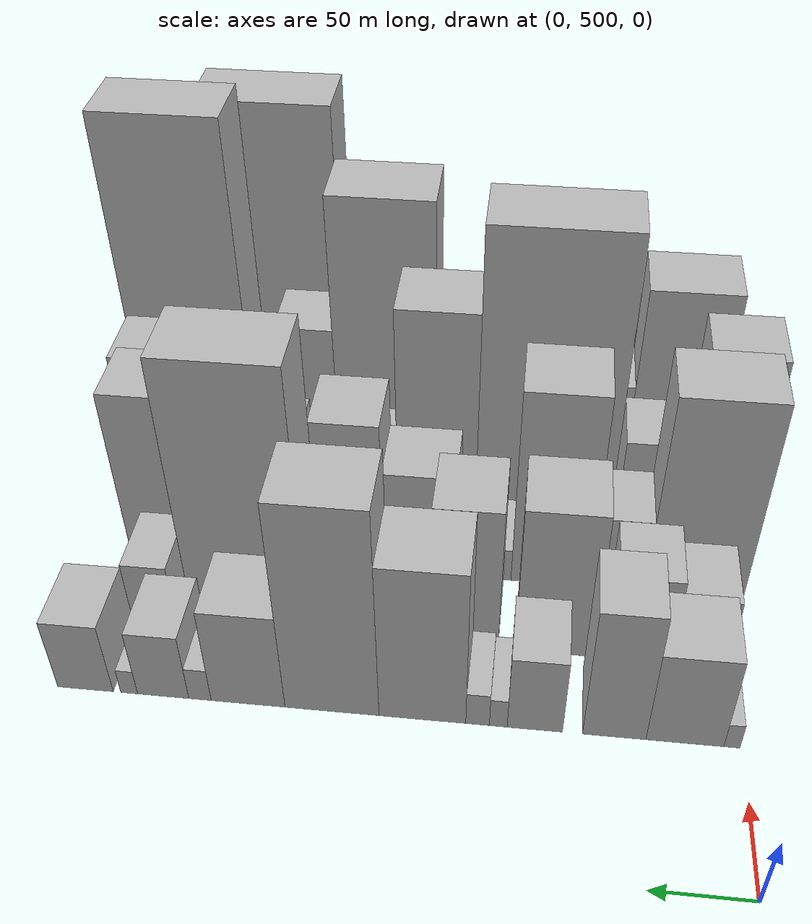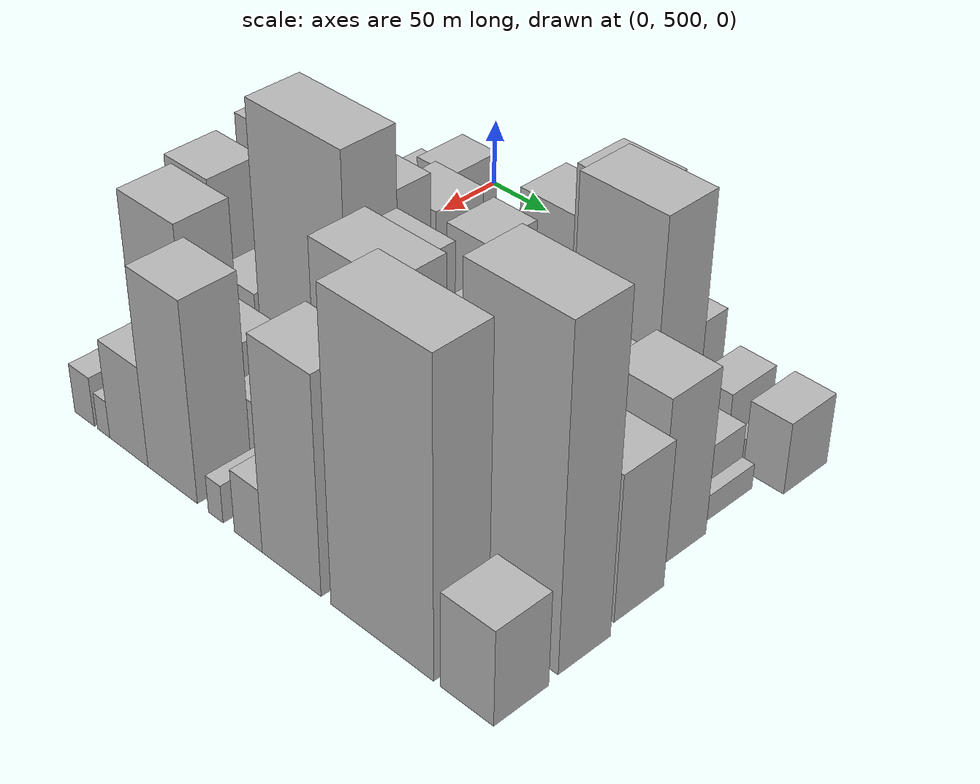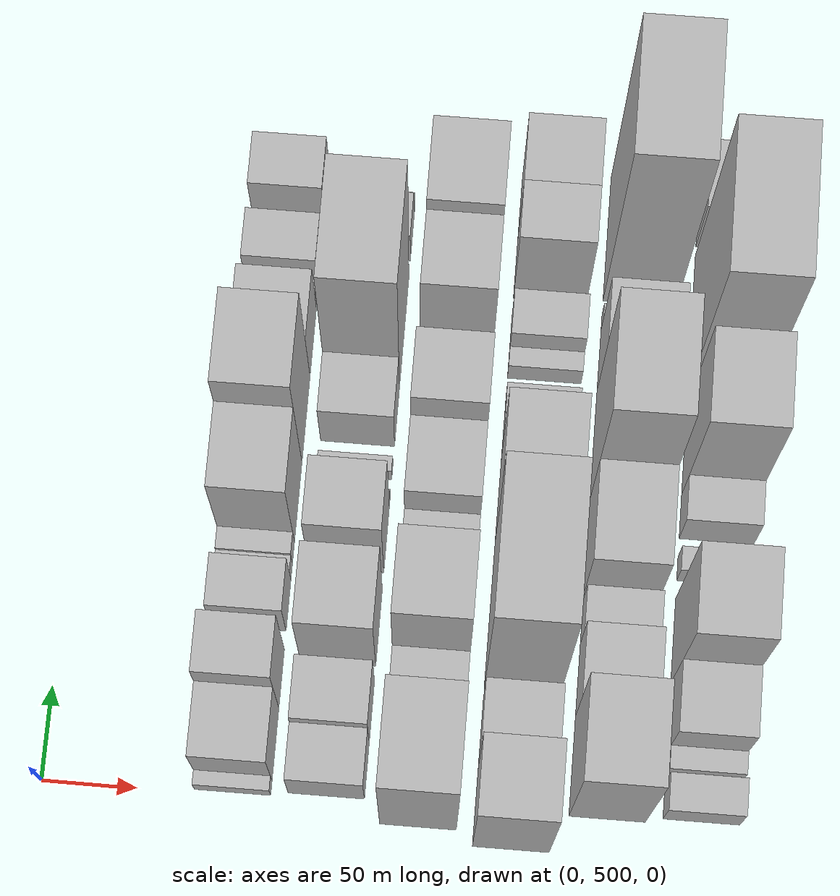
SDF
<sdf version="1.6">
 <world name="default">
  <model name="building_39">
   <static>1</static>
   <pose>100.0000 505.7400 0 0.000000 0.000000 0.000000</pose>
   <link name="link">
    <pose>0 0 9.00 0 0 0</pose>
    <collision name="collision"><geometry><box><size>40.0000 7.8266 18.0000</size></box></geometry></collision>
    <visual name="visual">
     <cast_shadows>0</cast_shadows>
     <geometry><box><size>40.0000 7.8266 18.0000</size></box></geometry>
     <material>
      <script>
       <uri>model://HANNAS_wall/materials/scripts</uri>
       <uri>model://HANNAS_wall/materials/textures</uri>
       <name>vrc/HANNAS_wall</name>
      </script>
     </material>
    </visual>
   </link>
  </model>
  <model name="building_40">
   <static>1</static>
   <pose>100.0000 528.8231 0 0.000000 0.000000 0.000000</pose>
   <link name="link">
    <pose>0 0 33.00 0 0 0</pose>
    <collision name="collision"><geometry><box><size>40.0000 38.3396 66.0000</size></box></geometry></collision>
    <visual name="visual">
     <cast_shadows>0</cast_shadows>
     <geometry><box><size>40.0000 38.3396 66.0000</size></box></geometry>
     <material>
      <script>
       <uri>model://HANNAS_wall/materials/scripts</uri>
       <uri>model://HANNAS_wall/materials/textures</uri>
       <name>vrc/HANNAS_wall</name>
      </script>
     </material>
    </visual>
   </link>
  </model>
  <model name="building_41">
   <static>1</static>
   <pose>100.0000 563.7288 0 0.000000 0.000000 0.000000</pose>
   <link name="link">
    <pose>0 0 46.50 0 0 0</pose>
    <collision name="collision"><geometry><box><size>40.0000 31.4718 93.0000</size></box></geometry></collision>
    <visual name="visual">
     <cast_shadows>0</cast_shadows>
     <geometry><box><size>40.0000 31.4718 93.0000</size></box></geometry>
     <material>
      <script>
       <uri>model://HANNAS_wall/materials/scripts</uri>
       <uri>model://HANNAS_wall/materials/textures</uri>
       <name>vrc/HANNAS_wall</name>
      </script>
     </material>
    </visual>
   </link>
  </model>
  <model name="building_42">
   <static>1</static>
   <pose>100.0000 603.3190 0 0.000000 0.000000 0.000000</pose>
   <link name="link">
    <pose>0 0 27.00 0 0 0</pose>
    <collision name="collision"><geometry><box><size>40.0000 27.7086 54.0000</size></box></geometry></collision>
    <visual name="visual">
     <cast_shadows>0</cast_shadows>
     <geometry><box><size>40.0000 27.7086 54.0000</size></box></geometry>
     <material>
      <script>
       <uri>model://HANNAS_wall/materials/scripts</uri>
       <uri>model://HANNAS_wall/materials/textures</uri>
       <name>vrc/HANNAS_wall</name>
      </script>
     </material>
    </visual>
   </link>
  </model>
  <model name="building_43">
   <static>1</static>
   <pose>100.0000 621.6460 0 0.000000 0.000000 0.000000</pose>
   <link name="link">
    <pose>0 0 10.50 0 0 0</pose>
    <collision name="collision"><geometry><box><size>40.0000 8.9455 21.0000</size></box></geometry></collision>
    <visual name="visual">
     <cast_shadows>0</cast_shadows>
     <geometry><box><size>40.0000 8.9455 21.0000</size></box></geometry>
     <material>
      <script>
       <uri>model://HANNAS_wall/materials/scripts</uri>
       <uri>model://HANNAS_wall/materials/textures</uri>
       <name>vrc/HANNAS_wall</name>
      </script>
     </material>
    </visual>
   </link>
  </model>
  <model name="building_44">
   <static>1</static>
   <pose>100.0000 632.0874 0 0.000000 0.000000 0.000000</pose>
   <link name="link">
    <pose>0 0 12.00 0 0 0</pose>
    <collision name="collision"><geometry><box><size>40.0000 11.9373 24.0000</size></box></geometry></collision>
    <visual name="visual">
     <cast_shadows>0</cast_shadows>
     <geometry><box><size>40.0000 11.9373 24.0000</size></box></geometry>
     <material>
      <script>
       <uri>model://HANNAS_wall/materials/scripts</uri>
       <uri>model://HANNAS_wall/materials/textures</uri>
       <name>vrc/HANNAS_wall</name>
      </script>
     </material>
    </visual>
   </link>
  </model>
  <model name="building_45">
   <static>1</static>
   <pose>100.0000 660.1086 0 0.000000 0.000000 0.000000</pose>
   <link name="link">
    <pose>0 0 55.50 0 0 0</pose>
    <collision name="collision"><geometry><box><size>40.0000 44.1050 111.0000</size></box></geometry></collision>
    <visual name="visual">
     <cast_shadows>0</cast_shadows>
     <geometry><box><size>40.0000 44.1050 111.0000</size></box></geometry>
     <material>
      <script>
       <uri>model://HANNAS_wall/materials/scripts</uri>
       <uri>model://HANNAS_wall/materials/textures</uri>
       <name>vrc/HANNAS_wall</name>
      </script>
     </material>
    </visual>
   </link>
  </model>
  <model name="building_46">
   <static>1</static>
   <pose>100.0000 706.3881 0 0.000000 0.000000 0.000000</pose>
   <link name="link">
    <pose>0 0 73.50 0 0 0</pose>
    <collision name="collision"><geometry><box><size>40.0000 48.4541 147.0000</size></box></geometry></collision>
    <visual name="visual">
     <cast_shadows>0</cast_shadows>
     <geometry><box><size>40.0000 48.4541 147.0000</size></box></geometry>
     <material>
      <script>
       <uri>model://HANNAS_wall/materials/scripts</uri>
       <uri>model://HANNAS_wall/materials/textures</uri>
       <name>vrc/HANNAS_wall</name>
      </script>
     </material>
    </visual>
   </link>
  </model>
  <model name="building_47">
   <static>1</static>
   <pose>100.0000 749.8474 0 0.000000 0.000000 0.000000</pose>
   <link name="link">
    <pose>0 0 34.50 0 0 0</pose>
    <collision name="collision"><geometry><box><size>40.0000 38.4644 69.0000</size></box></geometry></collision>
    <visual name="visual">
     <cast_shadows>0</cast_shadows>
     <geometry><box><size>40.0000 38.4644 69.0000</size></box></geometry>
     <material>
      <script>
       <uri>model://HANNAS_wall/materials/scripts</uri>
       <uri>model://HANNAS_wall/materials/textures</uri>
       <name>vrc/HANNAS_wall</name>
      </script>
     </material>
    </visual>
   </link>
  </model>
  <model name="building_48">
   <static>1</static>
   <pose>100.0000 774.9256 0 0.000000 0.000000 0.000000</pose>
   <link name="link">
    <pose>0 0 12.00 0 0 0</pose>
    <collision name="collision"><geometry><box><size>40.0000 11.6920 24.0000</size></box></geometry></collision>
    <visual name="visual">
     <cast_shadows>0</cast_shadows>
     <geometry><box><size>40.0000 11.6920 24.0000</size></box></geometry>
     <material>
      <script>
       <uri>model://HANNAS_wall/materials/scripts</uri>
       <uri>model://HANNAS_wall/materials/textures</uri>
       <name>vrc/HANNAS_wall</name>
      </script>
     </material>
    </visual>
   </link>
  </model>
  <model name="building_49">
   <static>1</static>
   <pose>100.0000 794.2808 0 0.000000 0.000000 0.000000</pose>
   <link name="link">
    <pose>0 0 24.00 0 0 0</pose>
    <collision name="collision"><geometry><box><size>40.0000 27.0184 48.0000</size></box></geometry></collision>
    <visual name="visual">
     <cast_shadows>0</cast_shadows>
     <geometry><box><size>40.0000 27.0184 48.0000</size></box></geometry>
     <material>
      <script>
       <uri>model://HANNAS_wall/materials/scripts</uri>
       <uri>model://HANNAS_wall/materials/textures</uri>
       <name>vrc/HANNAS_wall</name>
      </script>
     </material>
    </visual>
   </link>
  </model>
  <model name="building_50">
   <static>1</static>
   <pose>100.0000 812.2266 0 0.000000 0.000000 0.000000</pose>
   <link name="link">
    <pose>0 0 9.00 0 0 0</pose>
    <collision name="collision"><geometry><box><size>40.0000 8.8730 18.0000</size></box></geometry></collision>
    <visual name="visual">
     <cast_shadows>0</cast_shadows>
     <geometry><box><size>40.0000 8.8730 18.0000</size></box></geometry>
     <material>
      <script>
       <uri>model://HANNAS_wall/materials/scripts</uri>
       <uri>model://HANNAS_wall/materials/textures</uri>
       <name>vrc/HANNAS_wall</name>
      </script>
     </material>
    </visual>
   </link>
  </model>
  <model name="building_51">
   <static>1</static>
   <pose>100.0000 835.4066 0 0.000000 0.000000 0.000000</pose>
   <link name="link">
    <pose>0 0 25.50 0 0 0</pose>
    <collision name="collision"><geometry><box><size>40.0000 29.4870 51.0000</size></box></geometry></collision>
    <visual name="visual">
     <cast_shadows>0</cast_shadows>
     <geometry><box><size>40.0000 29.4870 51.0000</size></box></geometry>
     <material>
      <script>
       <uri>model://HANNAS_wall/materials/scripts</uri>
       <uri>model://HANNAS_wall/materials/textures</uri>
       <name>vrc/HANNAS_wall</name>
      </script>
     </material>
    </visual>
   </link>
  </model>
  <model name="building_97">
   <static>1</static>
   <pose>149.0000 518.6823 0 0.000000 0.000000 0.000000</pose>
   <link name="link">
    <pose>0 0 25.50 0 0 0</pose>
    <collision name="collision"><geometry><box><size>40.0000 29.6349 51.0000</size></box></geometry></collision>
    <visual name="visual">
     <cast_shadows>0</cast_shadows>
     <geometry><box><size>40.0000 29.6349 51.0000</size></box></geometry>
     <material>
      <script>
       <uri>model://HANNAS_wall/materials/scripts</uri>
       <uri>model://HANNAS_wall/materials/textures</uri>
       <name>vrc/HANNAS_wall</name>
      </script>
     </material>
    </visual>
   </link>
  </model>
  <model name="building_98">
   <static>1</static>
   <pose>149.0000 549.8421 0 0.000000 0.000000 0.000000</pose>
   <link name="link">
    <pose>0 0 31.50 0 0 0</pose>
    <collision name="collision"><geometry><box><size>40.0000 32.6846 63.0000</size></box></geometry></collision>
    <visual name="visual">
     <cast_shadows>0</cast_shadows>
     <geometry><box><size>40.0000 32.6846 63.0000</size></box></geometry>
     <material>
      <script>
       <uri>model://HANNAS_wall/materials/scripts</uri>
       <uri>model://HANNAS_wall/materials/textures</uri>
       <name>vrc/HANNAS_wall</name>
      </script>
     </material>
    </visual>
   </link>
  </model>
  <model name="building_99">
   <static>1</static>
   <pose>149.0000 595.0248 0 0.000000 0.000000 0.000000</pose>
   <link name="link">
    <pose>0 0 52.50 0 0 0</pose>
    <collision name="collision"><geometry><box><size>40.0000 41.6807 105.0000</size></box></geometry></collision>
    <visual name="visual">
     <cast_shadows>0</cast_shadows>
     <geometry><box><size>40.0000 41.6807 105.0000</size></box></geometry>
     <material>
      <script>
       <uri>model://HANNAS_wall/materials/scripts</uri>
       <uri>model://HANNAS_wall/materials/textures</uri>
       <name>vrc/HANNAS_wall</name>
      </script>
     </material>
    </visual>
   </link>
  </model>
  <model name="building_100">
   <static>1</static>
   <pose>149.0000 642.7756 0 0.000000 0.000000 0.000000</pose>
   <link name="link">
    <pose>0 0 51.00 0 0 0</pose>
    <collision name="collision"><geometry><box><size>40.0000 35.8208 102.0000</size></box></geometry></collision>
    <visual name="visual">
     <cast_shadows>0</cast_shadows>
     <geometry><box><size>40.0000 35.8208 102.0000</size></box></geometry>
     <material>
      <script>
       <uri>model://HANNAS_wall/materials/scripts</uri>
       <uri>model://HANNAS_wall/materials/textures</uri>
       <name>vrc/HANNAS_wall</name>
      </script>
     </material>
    </visual>
   </link>
  </model>
  <model name="building_101">
   <static>1</static>
   <pose>149.0000 664.0879 0 0.000000 0.000000 0.000000</pose>
   <link name="link">
    <pose>0 0 7.50 0 0 0</pose>
    <collision name="collision"><geometry><box><size>40.0000 6.8039 15.0000</size></box></geometry></collision>
    <visual name="visual">
     <cast_shadows>0</cast_shadows>
     <geometry><box><size>40.0000 6.8039 15.0000</size></box></geometry>
     <material>
      <script>
       <uri>model://HANNAS_wall/materials/scripts</uri>
       <uri>model://HANNAS_wall/materials/textures</uri>
       <name>vrc/HANNAS_wall</name>
      </script>
     </material>
    </visual>
   </link>
  </model>
  <model name="building_102">
   <static>1</static>
   <pose>149.0000 680.7522 0 0.000000 0.000000 0.000000</pose>
   <link name="link">
    <pose>0 0 9.00 0 0 0</pose>
    <collision name="collision"><geometry><box><size>40.0000 8.5246 18.0000</size></box></geometry></collision>
    <visual name="visual">
     <cast_shadows>0</cast_shadows>
     <geometry><box><size>40.0000 8.5246 18.0000</size></box></geometry>
     <material>
      <script>
       <uri>model://HANNAS_wall/materials/scripts</uri>
       <uri>model://HANNAS_wall/materials/textures</uri>
       <name>vrc/HANNAS_wall</name>
      </script>
     </material>
    </visual>
   </link>
  </model>
  <model name="building_103">
   <static>1</static>
   <pose>149.0000 711.2563 0 0.000000 0.000000 0.000000</pose>
   <link name="link">
    <pose>0 0 30.00 0 0 0</pose>
    <collision name="collision"><geometry><box><size>40.0000 32.4837 60.0000</size></box></geometry></collision>
    <visual name="visual">
     <cast_shadows>0</cast_shadows>
     <geometry><box><size>40.0000 32.4837 60.0000</size></box></geometry>
     <material>
      <script>
       <uri>model://HANNAS_wall/materials/scripts</uri>
       <uri>model://HANNAS_wall/materials/textures</uri>
       <name>vrc/HANNAS_wall</name>
      </script>
     </material>
    </visual>
   </link>
  </model>
  <model name="building_104">
   <static>1</static>
   <pose>149.0000 759.1591 0 0.000000 0.000000 0.000000</pose>
   <link name="link">
    <pose>0 0 91.50 0 0 0</pose>
    <collision name="collision"><geometry><box><size>40.0000 63.3218 183.0000</size></box></geometry></collision>
    <visual name="visual">
     <cast_shadows>0</cast_shadows>
     <geometry><box><size>40.0000 63.3218 183.0000</size></box></geometry>
     <material>
      <script>
       <uri>model://HANNAS_wall/materials/scripts</uri>
       <uri>model://HANNAS_wall/materials/textures</uri>
       <name>vrc/HANNAS_wall</name>
      </script>
     </material>
    </visual>
   </link>
  </model>
  <model name="building_105">
   <static>1</static>
   <pose>149.0000 813.1308 0 0.000000 0.000000 0.000000</pose>
   <link name="link">
    <pose>0 0 21.00 0 0 0</pose>
    <collision name="collision"><geometry><box><size>40.0000 24.6217 42.0000</size></box></geometry></collision>
    <visual name="visual">
     <cast_shadows>0</cast_shadows>
     <geometry><box><size>40.0000 24.6217 42.0000</size></box></geometry>
     <material>
      <script>
       <uri>model://HANNAS_wall/materials/scripts</uri>
       <uri>model://HANNAS_wall/materials/textures</uri>
       <name>vrc/HANNAS_wall</name>
      </script>
     </material>
    </visual>
   </link>
  </model>
  <model name="building_106">
   <static>1</static>
   <pose>149.0000 829.8692 0 0.000000 0.000000 0.000000</pose>
   <link name="link">
    <pose>0 0 9.00 0 0 0</pose>
    <collision name="collision"><geometry><box><size>40.0000 8.8550 18.0000</size></box></geometry></collision>
    <visual name="visual">
     <cast_shadows>0</cast_shadows>
     <geometry><box><size>40.0000 8.8550 18.0000</size></box></geometry>
     <material>
      <script>
       <uri>model://HANNAS_wall/materials/scripts</uri>
       <uri>model://HANNAS_wall/materials/textures</uri>
       <name>vrc/HANNAS_wall</name>
      </script>
     </material>
    </visual>
   </link>
  </model>
  <model name="building_148">
   <static>1</static>
   <pose>198.0000 518.7835 0 0.000000 0.000000 0.000000</pose>
   <link name="link">
    <pose>0 0 70.50 0 0 0</pose>
    <collision name="collision"><geometry><box><size>40.0000 54.4192 141.0000</size></box></geometry></collision>
    <visual name="visual">
     <cast_shadows>0</cast_shadows>
     <geometry><box><size>40.0000 54.4192 141.0000</size></box></geometry>
     <material>
      <script>
       <uri>model://HANNAS_wall/materials/scripts</uri>
       <uri>model://HANNAS_wall/materials/textures</uri>
       <name>vrc/HANNAS_wall</name>
      </script>
     </material>
    </visual>
   </link>
  </model>
  <model name="building_149">
   <static>1</static>
   <pose>198.0000 561.2110 0 0.000000 0.000000 0.000000</pose>
   <link name="link">
    <pose>0 0 27.00 0 0 0</pose>
    <collision name="collision"><geometry><box><size>40.0000 30.4358 54.0000</size></box></geometry></collision>
    <visual name="visual">
     <cast_shadows>0</cast_shadows>
     <geometry><box><size>40.0000 30.4358 54.0000</size></box></geometry>
     <material>
      <script>
       <uri>model://HANNAS_wall/materials/scripts</uri>
       <uri>model://HANNAS_wall/materials/textures</uri>
       <name>vrc/HANNAS_wall</name>
      </script>
     </material>
    </visual>
   </link>
  </model>
  <model name="building_150">
   <static>1</static>
   <pose>198.0000 598.5498 0 0.000000 0.000000 0.000000</pose>
   <link name="link">
    <pose>0 0 69.00 0 0 0</pose>
    <collision name="collision"><geometry><box><size>40.0000 44.2419 138.0000</size></box></geometry></collision>
    <visual name="visual">
     <cast_shadows>0</cast_shadows>
     <geometry><box><size>40.0000 44.2419 138.0000</size></box></geometry>
     <material>
      <script>
       <uri>model://HANNAS_wall/materials/scripts</uri>
       <uri>model://HANNAS_wall/materials/textures</uri>
       <name>vrc/HANNAS_wall</name>
      </script>
     </material>
    </visual>
   </link>
  </model>
  <model name="building_151">
   <static>1</static>
   <pose>198.0000 626.5294 0 0.000000 0.000000 0.000000</pose>
   <link name="link">
    <pose>0 0 12.00 0 0 0</pose>
    <collision name="collision"><geometry><box><size>40.0000 11.7173 24.0000</size></box></geometry></collision>
    <visual name="visual">
     <cast_shadows>0</cast_shadows>
     <geometry><box><size>40.0000 11.7173 24.0000</size></box></geometry>
     <material>
      <script>
       <uri>model://HANNAS_wall/materials/scripts</uri>
       <uri>model://HANNAS_wall/materials/textures</uri>
       <name>vrc/HANNAS_wall</name>
      </script>
     </material>
    </visual>
   </link>
  </model>
  <model name="building_152">
   <static>1</static>
   <pose>198.0000 642.4930 0 0.000000 0.000000 0.000000</pose>
   <link name="link">
    <pose>0 0 18.00 0 0 0</pose>
    <collision name="collision"><geometry><box><size>40.0000 20.2099 36.0000</size></box></geometry></collision>
    <visual name="visual">
     <cast_shadows>0</cast_shadows>
     <geometry><box><size>40.0000 20.2099 36.0000</size></box></geometry>
     <material>
      <script>
       <uri>model://HANNAS_wall/materials/scripts</uri>
       <uri>model://HANNAS_wall/materials/textures</uri>
       <name>vrc/HANNAS_wall</name>
      </script>
     </material>
    </visual>
   </link>
  </model>
  <model name="building_153">
   <static>1</static>
   <pose>198.0000 672.7503 0 0.000000 0.000000 0.000000</pose>
   <link name="link">
    <pose>0 0 37.50 0 0 0</pose>
    <collision name="collision"><geometry><box><size>40.0000 40.3047 75.0000</size></box></geometry></collision>
    <visual name="visual">
     <cast_shadows>0</cast_shadows>
     <geometry><box><size>40.0000 40.3047 75.0000</size></box></geometry>
     <material>
      <script>
       <uri>model://HANNAS_wall/materials/scripts</uri>
       <uri>model://HANNAS_wall/materials/textures</uri>
       <name>vrc/HANNAS_wall</name>
      </script>
     </material>
    </visual>
   </link>
  </model>
  <model name="building_154">
   <static>1</static>
   <pose>198.0000 711.5807 0 0.000000 0.000000 0.000000</pose>
   <link name="link">
    <pose>0 0 54.00 0 0 0</pose>
    <collision name="collision"><geometry><box><size>40.0000 37.3562 108.0000</size></box></geometry></collision>
    <visual name="visual">
     <cast_shadows>0</cast_shadows>
     <geometry><box><size>40.0000 37.3562 108.0000</size></box></geometry>
     <material>
      <script>
       <uri>model://HANNAS_wall/materials/scripts</uri>
       <uri>model://HANNAS_wall/materials/textures</uri>
       <name>vrc/HANNAS_wall</name>
      </script>
     </material>
    </visual>
   </link>
  </model>
  <model name="building_155">
   <static>1</static>
   <pose>198.0000 738.1492 0 0.000000 0.000000 0.000000</pose>
   <link name="link">
    <pose>0 0 15.00 0 0 0</pose>
    <collision name="collision"><geometry><box><size>40.0000 15.7806 30.0000</size></box></geometry></collision>
    <visual name="visual">
     <cast_shadows>0</cast_shadows>
     <geometry><box><size>40.0000 15.7806 30.0000</size></box></geometry>
     <material>
      <script>
       <uri>model://HANNAS_wall/materials/scripts</uri>
       <uri>model://HANNAS_wall/materials/textures</uri>
       <name>vrc/HANNAS_wall</name>
      </script>
     </material>
    </visual>
   </link>
  </model>
  <model name="building_156">
   <static>1</static>
   <pose>198.0000 775.1229 0 0.000000 0.000000 0.000000</pose>
   <link name="link">
    <pose>0 0 51.00 0 0 0</pose>
    <collision name="collision"><geometry><box><size>40.0000 40.1668 102.0000</size></box></geometry></collision>
    <visual name="visual">
     <cast_shadows>0</cast_shadows>
     <geometry><box><size>40.0000 40.1668 102.0000</size></box></geometry>
     <material>
      <script>
       <uri>model://HANNAS_wall/materials/scripts</uri>
       <uri>model://HANNAS_wall/materials/textures</uri>
       <name>vrc/HANNAS_wall</name>
      </script>
     </material>
    </visual>
   </link>
  </model>
  <model name="building_157">
   <static>1</static>
   <pose>198.0000 818.0505 0 0.000000 0.000000 0.000000</pose>
   <link name="link">
    <pose>0 0 58.50 0 0 0</pose>
    <collision name="collision"><geometry><box><size>40.0000 45.6884 117.0000</size></box></geometry></collision>
    <visual name="visual">
     <cast_shadows>0</cast_shadows>
     <geometry><box><size>40.0000 45.6884 117.0000</size></box></geometry>
     <material>
      <script>
       <uri>model://HANNAS_wall/materials/scripts</uri>
       <uri>model://HANNAS_wall/materials/textures</uri>
       <name>vrc/HANNAS_wall</name>
      </script>
     </material>
    </visual>
   </link>
  </model>
  <model name="building_194">
   <static>1</static>
   <pose>247.0000 503.9544 0 0.000000 0.000000 0.000000</pose>
   <link name="link">
    <pose>0 0 64.50 0 0 0</pose>
    <collision name="collision"><geometry><box><size>40.0000 40.3109 129.0000</size></box></geometry></collision>
    <visual name="visual">
     <cast_shadows>0</cast_shadows>
     <geometry><box><size>40.0000 40.3109 129.0000</size></box></geometry>
     <material>
      <script>
       <uri>model://HANNAS_wall/materials/scripts</uri>
       <uri>model://HANNAS_wall/materials/textures</uri>
       <name>vrc/HANNAS_wall</name>
      </script>
     </material>
    </visual>
   </link>
  </model>
  <model name="building_195">
   <static>1</static>
   <pose>247.0000 542.9184 0 0.000000 0.000000 0.000000</pose>
   <link name="link">
    <pose>0 0 33.00 0 0 0</pose>
    <collision name="collision"><geometry><box><size>40.0000 37.6171 66.0000</size></box></geometry></collision>
    <visual name="visual">
     <cast_shadows>0</cast_shadows>
     <geometry><box><size>40.0000 37.6171 66.0000</size></box></geometry>
     <material>
      <script>
       <uri>model://HANNAS_wall/materials/scripts</uri>
       <uri>model://HANNAS_wall/materials/textures</uri>
       <name>vrc/HANNAS_wall</name>
      </script>
     </material>
    </visual>
   </link>
  </model>
  <model name="building_196">
   <static>1</static>
   <pose>247.0000 605.2091 0 0.000000 0.000000 0.000000</pose>
   <link name="link">
    <pose>0 0 100.50 0 0 0</pose>
    <collision name="collision"><geometry><box><size>40.0000 78.9644 201.0000</size></box></geometry></collision>
    <visual name="visual">
     <cast_shadows>0</cast_shadows>
     <geometry><box><size>40.0000 78.9644 201.0000</size></box></geometry>
     <material>
      <script>
       <uri>model://HANNAS_wall/materials/scripts</uri>
       <uri>model://HANNAS_wall/materials/textures</uri>
       <name>vrc/HANNAS_wall</name>
      </script>
     </material>
    </visual>
   </link>
  </model>
  <model name="building_197">
   <static>1</static>
   <pose>247.0000 667.8737 0 0.000000 0.000000 0.000000</pose>
   <link name="link">
    <pose>0 0 73.50 0 0 0</pose>
    <collision name="collision"><geometry><box><size>40.0000 46.3648 147.0000</size></box></geometry></collision>
    <visual name="visual">
     <cast_shadows>0</cast_shadows>
     <geometry><box><size>40.0000 46.3648 147.0000</size></box></geometry>
     <material>
      <script>
       <uri>model://HANNAS_wall/materials/scripts</uri>
       <uri>model://HANNAS_wall/materials/textures</uri>
       <name>vrc/HANNAS_wall</name>
      </script>
     </material>
    </visual>
   </link>
  </model>
  <model name="building_198">
   <static>1</static>
   <pose>247.0000 703.1868 0 0.000000 0.000000 0.000000</pose>
   <link name="link">
    <pose>0 0 22.50 0 0 0</pose>
    <collision name="collision"><geometry><box><size>40.0000 24.2614 45.0000</size></box></geometry></collision>
    <visual name="visual">
     <cast_shadows>0</cast_shadows>
     <geometry><box><size>40.0000 24.2614 45.0000</size></box></geometry>
     <material>
      <script>
       <uri>model://HANNAS_wall/materials/scripts</uri>
       <uri>model://HANNAS_wall/materials/textures</uri>
       <name>vrc/HANNAS_wall</name>
      </script>
     </material>
    </visual>
   </link>
  </model>
  <model name="building_199">
   <static>1</static>
   <pose>247.0000 721.7664 0 0.000000 0.000000 0.000000</pose>
   <link name="link">
    <pose>0 0 13.50 0 0 0</pose>
    <collision name="collision"><geometry><box><size>40.0000 12.8978 27.0000</size></box></geometry></collision>
    <visual name="visual">
     <cast_shadows>0</cast_shadows>
     <geometry><box><size>40.0000 12.8978 27.0000</size></box></geometry>
     <material>
      <script>
       <uri>model://HANNAS_wall/materials/scripts</uri>
       <uri>model://HANNAS_wall/materials/textures</uri>
       <name>vrc/HANNAS_wall</name>
      </script>
     </material>
    </visual>
   </link>
  </model>
  <model name="building_200">
   <static>1</static>
   <pose>247.0000 743.6843 0 0.000000 0.000000 0.000000</pose>
   <link name="link">
    <pose>0 0 12.00 0 0 0</pose>
    <collision name="collision"><geometry><box><size>40.0000 10.9380 24.0000</size></box></geometry></collision>
    <visual name="visual">
     <cast_shadows>0</cast_shadows>
     <geometry><box><size>40.0000 10.9380 24.0000</size></box></geometry>
     <material>
      <script>
       <uri>model://HANNAS_wall/materials/scripts</uri>
       <uri>model://HANNAS_wall/materials/textures</uri>
       <name>vrc/HANNAS_wall</name>
      </script>
     </material>
    </visual>
   </link>
  </model>
  <model name="building_201">
   <static>1</static>
   <pose>247.0000 761.6006 0 0.000000 0.000000 0.000000</pose>
   <link name="link">
    <pose>0 0 24.00 0 0 0</pose>
    <collision name="collision"><geometry><box><size>40.0000 24.8946 48.0000</size></box></geometry></collision>
    <visual name="visual">
     <cast_shadows>0</cast_shadows>
     <geometry><box><size>40.0000 24.8946 48.0000</size></box></geometry>
     <material>
      <script>
       <uri>model://HANNAS_wall/materials/scripts</uri>
       <uri>model://HANNAS_wall/materials/textures</uri>
       <name>vrc/HANNAS_wall</name>
      </script>
     </material>
    </visual>
   </link>
  </model>
  <model name="building_202">
   <static>1</static>
   <pose>247.0000 799.7049 0 0.000000 0.000000 0.000000</pose>
   <link name="link">
    <pose>0 0 51.00 0 0 0</pose>
    <collision name="collision"><geometry><box><size>40.0000 31.3140 102.0000</size></box></geometry></collision>
    <visual name="visual">
     <cast_shadows>0</cast_shadows>
     <geometry><box><size>40.0000 31.3140 102.0000</size></box></geometry>
     <material>
      <script>
       <uri>model://HANNAS_wall/materials/scripts</uri>
       <uri>model://HANNAS_wall/materials/textures</uri>
       <name>vrc/HANNAS_wall</name>
      </script>
     </material>
    </visual>
   </link>
  </model>
  <model name="building_203">
   <static>1</static>
   <pose>247.0000 833.8478 0 0.000000 0.000000 0.000000</pose>
   <link name="link">
    <pose>0 0 51.00 0 0 0</pose>
    <collision name="collision"><geometry><box><size>40.0000 36.9718 102.0000</size></box></geometry></collision>
    <visual name="visual">
     <cast_shadows>0</cast_shadows>
     <geometry><box><size>40.0000 36.9718 102.0000</size></box></geometry>
     <material>
      <script>
       <uri>model://HANNAS_wall/materials/scripts</uri>
       <uri>model://HANNAS_wall/materials/textures</uri>
       <name>vrc/HANNAS_wall</name>
      </script>
     </material>
    </visual>
   </link>
  </model>
  <model name="building_245">
   <static>1</static>
   <pose>296.0000 529.6740 0 0.000000 0.000000 0.000000</pose>
   <link name="link">
    <pose>0 0 67.50 0 0 0</pose>
    <collision name="collision"><geometry><box><size>40.0000 52.3826 135.0000</size></box></geometry></collision>
    <visual name="visual">
     <cast_shadows>0</cast_shadows>
     <geometry><box><size>40.0000 52.3826 135.0000</size></box></geometry>
     <material>
      <script>
       <uri>model://HANNAS_wall/materials/scripts</uri>
       <uri>model://HANNAS_wall/materials/textures</uri>
       <name>vrc/HANNAS_wall</name>
      </script>
     </material>
    </visual>
   </link>
  </model>
  <model name="building_246">
   <static>1</static>
   <pose>296.0000 575.2179 0 0.000000 0.000000 0.000000</pose>
   <link name="link">
    <pose>0 0 33.00 0 0 0</pose>
    <collision name="collision"><geometry><box><size>40.0000 38.7052 66.0000</size></box></geometry></collision>
    <visual name="visual">
     <cast_shadows>0</cast_shadows>
     <geometry><box><size>40.0000 38.7052 66.0000</size></box></geometry>
     <material>
      <script>
       <uri>model://HANNAS_wall/materials/scripts</uri>
       <uri>model://HANNAS_wall/materials/textures</uri>
       <name>vrc/HANNAS_wall</name>
      </script>
     </material>
    </visual>
   </link>
  </model>
  <model name="building_247">
   <static>1</static>
   <pose>296.0000 606.5298 0 0.000000 0.000000 0.000000</pose>
   <link name="link">
    <pose>0 0 21.00 0 0 0</pose>
    <collision name="collision"><geometry><box><size>40.0000 23.9185 42.0000</size></box></geometry></collision>
    <visual name="visual">
     <cast_shadows>0</cast_shadows>
     <geometry><box><size>40.0000 23.9185 42.0000</size></box></geometry>
     <material>
      <script>
       <uri>model://HANNAS_wall/materials/scripts</uri>
       <uri>model://HANNAS_wall/materials/textures</uri>
       <name>vrc/HANNAS_wall</name>
      </script>
     </material>
    </visual>
   </link>
  </model>
  <model name="building_248">
   <static>1</static>
   <pose>296.0000 647.5064 0 0.000000 0.000000 0.000000</pose>
   <link name="link">
    <pose>0 0 45.00 0 0 0</pose>
    <collision name="collision"><geometry><box><size>40.0000 52.0346 90.0000</size></box></geometry></collision>
    <visual name="visual">
     <cast_shadows>0</cast_shadows>
     <geometry><box><size>40.0000 52.0346 90.0000</size></box></geometry>
     <material>
      <script>
       <uri>model://HANNAS_wall/materials/scripts</uri>
       <uri>model://HANNAS_wall/materials/textures</uri>
       <name>vrc/HANNAS_wall</name>
      </script>
     </material>
    </visual>
   </link>
  </model>
  <model name="building_249">
   <static>1</static>
   <pose>296.0000 704.0047 0 0.000000 0.000000 0.000000</pose>
   <link name="link">
    <pose>0 0 91.50 0 0 0</pose>
    <collision name="collision"><geometry><box><size>40.0000 60.9621 183.0000</size></box></geometry></collision>
    <visual name="visual">
     <cast_shadows>0</cast_shadows>
     <geometry><box><size>40.0000 60.9621 183.0000</size></box></geometry>
     <material>
      <script>
       <uri>model://HANNAS_wall/materials/scripts</uri>
       <uri>model://HANNAS_wall/materials/textures</uri>
       <name>vrc/HANNAS_wall</name>
      </script>
     </material>
    </visual>
   </link>
  </model>
  <model name="building_250">
   <static>1</static>
   <pose>296.0000 751.9282 0 0.000000 0.000000 0.000000</pose>
   <link name="link">
    <pose>0 0 46.50 0 0 0</pose>
    <collision name="collision"><geometry><box><size>40.0000 34.8849 93.0000</size></box></geometry></collision>
    <visual name="visual">
     <cast_shadows>0</cast_shadows>
     <geometry><box><size>40.0000 34.8849 93.0000</size></box></geometry>
     <material>
      <script>
       <uri>model://HANNAS_wall/materials/scripts</uri>
       <uri>model://HANNAS_wall/materials/textures</uri>
       <name>vrc/HANNAS_wall</name>
      </script>
     </material>
    </visual>
   </link>
  </model>
  <model name="building_251">
   <static>1</static>
   <pose>296.0000 773.8910 0 0.000000 0.000000 0.000000</pose>
   <link name="link">
    <pose>0 0 10.50 0 0 0</pose>
    <collision name="collision"><geometry><box><size>40.0000 9.0408 21.0000</size></box></geometry></collision>
    <visual name="visual">
     <cast_shadows>0</cast_shadows>
     <geometry><box><size>40.0000 9.0408 21.0000</size></box></geometry>
     <material>
      <script>
       <uri>model://HANNAS_wall/materials/scripts</uri>
       <uri>model://HANNAS_wall/materials/textures</uri>
       <name>vrc/HANNAS_wall</name>
      </script>
     </material>
    </visual>
   </link>
  </model>
  <model name="building_252">
   <static>1</static>
   <pose>296.0000 822.1047 0 0.000000 0.000000 0.000000</pose>
   <link name="link">
    <pose>0 0 112.50 0 0 0</pose>
    <collision name="collision"><geometry><box><size>40.0000 71.3867 225.0000</size></box></geometry></collision>
    <visual name="visual">
     <cast_shadows>0</cast_shadows>
     <geometry><box><size>40.0000 71.3867 225.0000</size></box></geometry>
     <material>
      <script>
       <uri>model://HANNAS_wall/materials/scripts</uri>
       <uri>model://HANNAS_wall/materials/textures</uri>
       <name>vrc/HANNAS_wall</name>
      </script>
     </material>
    </visual>
   </link>
  </model>
  <model name="building_290">
   <static>1</static>
   <pose>345.0000 515.8302 0 0.000000 0.000000 0.000000</pose>
   <link name="link">
    <pose>0 0 18.00 0 0 0</pose>
    <collision name="collision"><geometry><box><size>40.0000 19.7305 36.0000</size></box></geometry></collision>
    <visual name="visual">
     <cast_shadows>0</cast_shadows>
     <geometry><box><size>40.0000 19.7305 36.0000</size></box></geometry>
     <material>
      <script>
       <uri>model://HANNAS_wall/materials/scripts</uri>
       <uri>model://HANNAS_wall/materials/textures</uri>
       <name>vrc/HANNAS_wall</name>
      </script>
     </material>
    </visual>
   </link>
  </model>
  <model name="building_291">
   <static>1</static>
   <pose>345.0000 534.7759 0 0.000000 0.000000 0.000000</pose>
   <link name="link">
    <pose>0 0 13.50 0 0 0</pose>
    <collision name="collision"><geometry><box><size>40.0000 12.1610 27.0000</size></box></geometry></collision>
    <visual name="visual">
     <cast_shadows>0</cast_shadows>
     <geometry><box><size>40.0000 12.1610 27.0000</size></box></geometry>
     <material>
      <script>
       <uri>model://HANNAS_wall/materials/scripts</uri>
       <uri>model://HANNAS_wall/materials/textures</uri>
       <name>vrc/HANNAS_wall</name>
      </script>
     </material>
    </visual>
   </link>
  </model>
  <model name="building_292">
   <static>1</static>
   <pose>345.0000 559.2875 0 0.000000 0.000000 0.000000</pose>
   <link name="link">
    <pose>0 0 36.00 0 0 0</pose>
    <collision name="collision"><geometry><box><size>40.0000 36.8622 72.0000</size></box></geometry></collision>
    <visual name="visual">
     <cast_shadows>0</cast_shadows>
     <geometry><box><size>40.0000 36.8622 72.0000</size></box></geometry>
     <material>
      <script>
       <uri>model://HANNAS_wall/materials/scripts</uri>
       <uri>model://HANNAS_wall/materials/textures</uri>
       <name>vrc/HANNAS_wall</name>
      </script>
     </material>
    </visual>
   </link>
  </model>
  <model name="building_293">
   <static>1</static>
   <pose>345.0000 600.5226 0 0.000000 0.000000 0.000000</pose>
   <link name="link">
    <pose>0 0 70.50 0 0 0</pose>
    <collision name="collision"><geometry><box><size>40.0000 45.6080 141.0000</size></box></geometry></collision>
    <visual name="visual">
     <cast_shadows>0</cast_shadows>
     <geometry><box><size>40.0000 45.6080 141.0000</size></box></geometry>
     <material>
      <script>
       <uri>model://HANNAS_wall/materials/scripts</uri>
       <uri>model://HANNAS_wall/materials/textures</uri>
       <name>vrc/HANNAS_wall</name>
      </script>
     </material>
    </visual>
   </link>
  </model>
  <model name="building_294">
   <static>1</static>
   <pose>345.0000 639.8232 0 0.000000 0.000000 0.000000</pose>
   <link name="link">
    <pose>0 0 13.50 0 0 0</pose>
    <collision name="collision"><geometry><box><size>40.0000 12.9931 27.0000</size></box></geometry></collision>
    <visual name="visual">
     <cast_shadows>0</cast_shadows>
     <geometry><box><size>40.0000 12.9931 27.0000</size></box></geometry>
     <material>
      <script>
       <uri>model://HANNAS_wall/materials/scripts</uri>
       <uri>model://HANNAS_wall/materials/textures</uri>
       <name>vrc/HANNAS_wall</name>
      </script>
     </material>
    </visual>
   </link>
  </model>
  <model name="building_295">
   <static>1</static>
   <pose>345.0000 668.3608 0 0.000000 0.000000 0.000000</pose>
   <link name="link">
    <pose>0 0 22.50 0 0 0</pose>
    <collision name="collision"><geometry><box><size>40.0000 24.0821 45.0000</size></box></geometry></collision>
    <visual name="visual">
     <cast_shadows>0</cast_shadows>
     <geometry><box><size>40.0000 24.0821 45.0000</size></box></geometry>
     <material>
      <script>
       <uri>model://HANNAS_wall/materials/scripts</uri>
       <uri>model://HANNAS_wall/materials/textures</uri>
       <name>vrc/HANNAS_wall</name>
      </script>
     </material>
    </visual>
   </link>
  </model>
  <model name="building_296">
   <static>1</static>
   <pose>345.0000 704.8552 0 0.000000 0.000000 0.000000</pose>
   <link name="link">
    <pose>0 0 75.00 0 0 0</pose>
    <collision name="collision"><geometry><box><size>40.0000 48.9067 150.0000</size></box></geometry></collision>
    <visual name="visual">
     <cast_shadows>0</cast_shadows>
     <geometry><box><size>40.0000 48.9067 150.0000</size></box></geometry>
     <material>
      <script>
       <uri>model://HANNAS_wall/materials/scripts</uri>
       <uri>model://HANNAS_wall/materials/textures</uri>
       <name>vrc/HANNAS_wall</name>
      </script>
     </material>
    </visual>
   </link>
  </model>
  <model name="building_297">
   <static>1</static>
   <pose>345.0000 776.8644 0 0.000000 0.000000 0.000000</pose>
   <link name="link">
    <pose>0 0 105.00 0 0 0</pose>
    <collision name="collision"><geometry><box><size>40.0000 79.1117 210.0000</size></box></geometry></collision>
    <visual name="visual">
     <cast_shadows>0</cast_shadows>
     <geometry><box><size>40.0000 79.1117 210.0000</size></box></geometry>
     <material>
      <script>
       <uri>model://HANNAS_wall/materials/scripts</uri>
       <uri>model://HANNAS_wall/materials/textures</uri>
       <name>vrc/HANNAS_wall</name>
      </script>
     </material>
    </visual>
   </link>
  </model>
  <model name="building_298">
   <static>1</static>
   <pose>345.0000 840.5347 0 0.000000 0.000000 0.000000</pose>
   <link name="link">
    <pose>0 0 33.00 0 0 0</pose>
    <collision name="collision"><geometry><box><size>40.0000 38.2290 66.0000</size></box></geometry></collision>
    <visual name="visual">
     <cast_shadows>0</cast_shadows>
     <geometry><box><size>40.0000 38.2290 66.0000</size></box></geometry>
     <material>
      <script>
       <uri>model://HANNAS_wall/materials/scripts</uri>
       <uri>model://HANNAS_wall/materials/textures</uri>
       <name>vrc/HANNAS_wall</name>
      </script>
     </material>
    </visual>
   </link>
  </model>
 </world>
</sdf>
